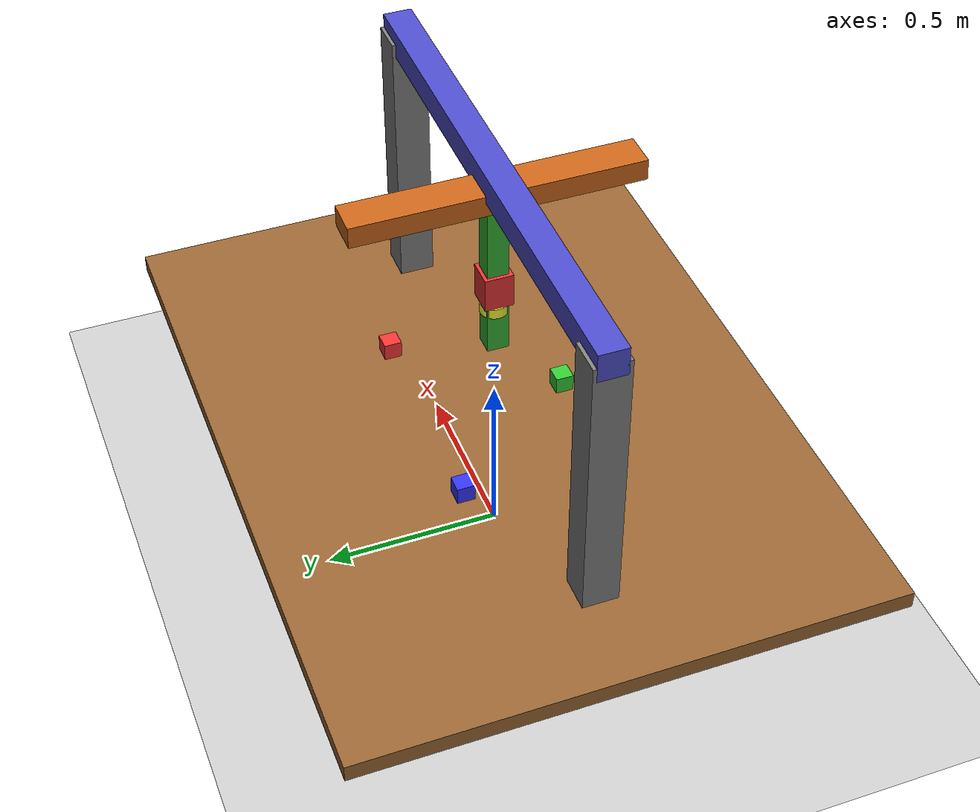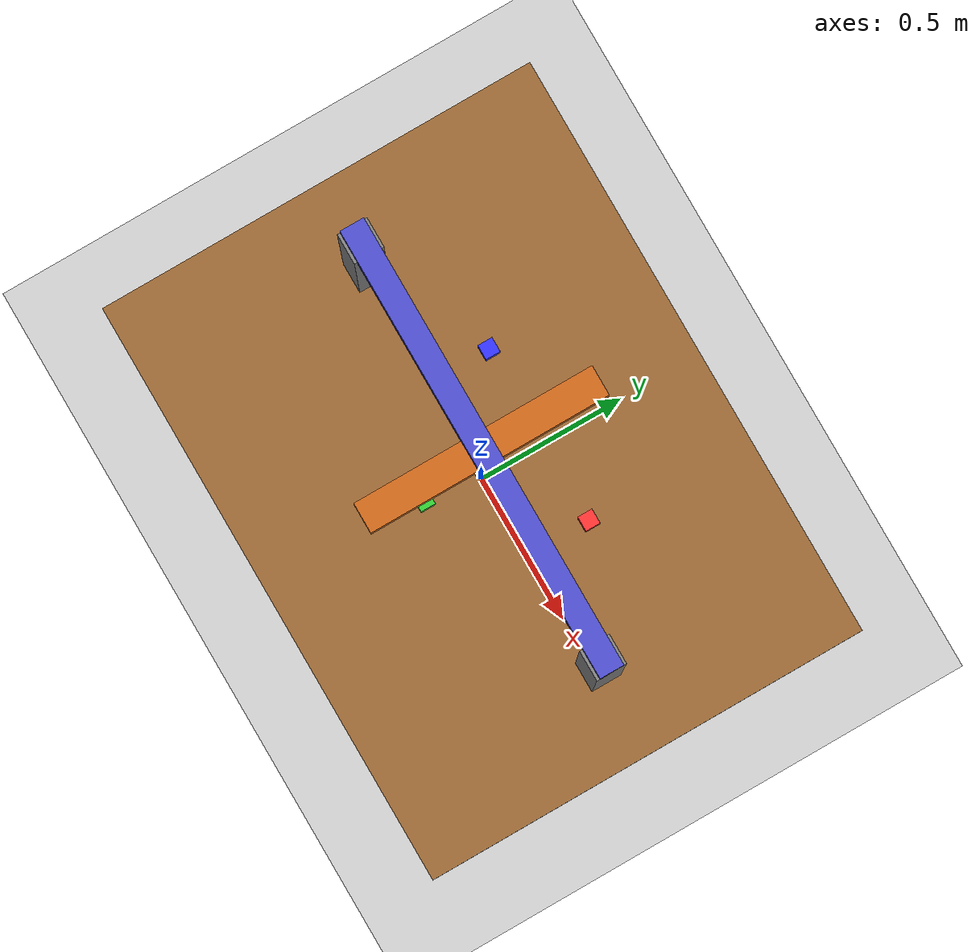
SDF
<?xml version="1.0" ?>
<sdf version="1.6">
  <world name="gantry_world">

    <!-- Physics -->
    <physics type="ode">
      <max_step_size>0.001</max_step_size>
      <real_time_factor>1</real_time_factor>
      <real_time_update_rate>1000</real_time_update_rate>
    </physics>

    <!-- Scene -->
    <scene>
      <ambient>0.4 0.4 0.4 1</ambient>
      <background>0.7 0.7 0.7 1</background>
      <shadows>true</shadows>
    </scene>

    <!-- Sun light -->
    <light type="directional" name="sun">
      <cast_shadows>true</cast_shadows>
      <pose>0 0 10 0 0 0</pose>
      <diffuse>0.8 0.8 0.8 1</diffuse>
      <specular>0.2 0.2 0.2 1</specular>
      <direction>-0.5 0.1 -0.9</direction>
    </light>

    <!-- Ground Plane -->
    <model name="ground_plane">
      <static>true</static>
      <link name="link">
        <collision name="collision">
          <geometry>
            <plane>
              <normal>0 0 1</normal>
              <size>10 10</size>
            </plane>
          </geometry>
        </collision>
        <visual name="visual">
          <geometry>
            <plane>
              <normal>0 0 1</normal>
              <size>10 10</size>
            </plane>
          </geometry>
          <material>
            <ambient>0.8 0.8 0.8 1</ambient>
            <diffuse>0.8 0.8 0.8 1</diffuse>
          </material>
        </visual>
      </link>
    </model>

    <!-- Work Table -->
    <model name="work_table">
      <static>true</static>
      <pose>0 0 0.4 0 0 0</pose>
      <link name="table_link">
        <collision name="collision">
          <geometry>
            <box><size>2.0 1.5 0.05</size></box>
          </geometry>
        </collision>
        <visual name="visual">
          <geometry>
            <box><size>2.0 1.5 0.05</size></box>
          </geometry>
          <material>
            <ambient>0.6 0.4 0.2 1</ambient>
            <diffuse>0.6 0.4 0.2 1</diffuse>
          </material>
        </visual>
      </link>
    </model>

    <!-- ==================== GANTRY ROBOT ==================== -->
    <model name="gantry_robot">
      <pose>0 0 0.425 0 0 0</pose>

      <!-- Base Frame (Fixed to table) -->
      <link name="base_link">
        <pose>0 0 0 0 0 0</pose>
        <inertial>
          <mass>50</mass>
          <inertia>
            <ixx>5</ixx><ixy>0</ixy><ixz>0</ixz>
            <iyy>5</iyy><iyz>0</iyz><izz>5</izz>
          </inertia>
        </inertial>
        <!-- Left vertical pillar -->
        <visual name="pillar_left">
          <pose>-0.7 0 0.4 0 0 0</pose>
          <geometry><box><size>0.1 0.1 0.8</size></box></geometry>
          <material>
            <ambient>0.3 0.3 0.3 1</ambient>
            <diffuse>0.5 0.5 0.5 1</diffuse>
          </material>
        </visual>
        <collision name="pillar_left_col">
          <pose>-0.7 0 0.4 0 0 0</pose>
          <geometry><box><size>0.1 0.1 0.8</size></box></geometry>
        </collision>
        <!-- Right vertical pillar -->
        <visual name="pillar_right">
          <pose>0.7 0 0.4 0 0 0</pose>
          <geometry><box><size>0.1 0.1 0.8</size></box></geometry>
          <material>
            <ambient>0.3 0.3 0.3 1</ambient>
            <diffuse>0.5 0.5 0.5 1</diffuse>
          </material>
        </visual>
        <collision name="pillar_right_col">
          <pose>0.7 0 0.4 0 0 0</pose>
          <geometry><box><size>0.1 0.1 0.8</size></box></geometry>
        </collision>
        <!-- Top horizontal beam (X-axis rail) -->
        <visual name="x_rail">
          <pose>0 0 0.8 0 0 0</pose>
          <geometry><box><size>1.5 0.08 0.08</size></box></geometry>
          <material>
            <ambient>0.2 0.2 0.6 1</ambient>
            <diffuse>0.3 0.3 0.8 1</diffuse>
          </material>
        </visual>
        <collision name="x_rail_col">
          <pose>0 0 0.8 0 0 0</pose>
          <geometry><box><size>1.5 0.08 0.08</size></box></geometry>
        </collision>
      </link>

      <!-- X-Carriage (moves along X) -->
      <link name="x_carriage">
        <pose>0 0 0.75 0 0 0</pose>
        <inertial>
          <mass>10</mass>
          <inertia>
            <ixx>0.5</ixx><ixy>0</ixy><ixz>0</ixz>
            <iyy>0.5</iyy><iyz>0</iyz><izz>0.5</izz>
          </inertia>
        </inertial>
        <!-- Y-axis rail -->
        <visual name="y_rail">
          <pose>0 0 0 0 0 0</pose>
          <geometry><box><size>0.1 0.8 0.06</size></box></geometry>
          <material>
            <ambient>0.6 0.3 0.1 1</ambient>
            <diffuse>0.8 0.4 0.1 1</diffuse>
          </material>
        </visual>
        <collision name="y_rail_col">
          <pose>0 0 0 0 0 0</pose>
          <geometry><box><size>0.1 0.8 0.06</size></box></geometry>
        </collision>
      </link>

      <!-- Y-Carriage (moves along Y) -->
      <link name="y_carriage">
        <pose>0 0 0.7 0 0 0</pose>
        <inertial>
          <mass>5</mass>
          <inertia>
            <ixx>0.2</ixx><ixy>0</ixy><ixz>0</ixz>
            <iyy>0.2</iyy><iyz>0</iyz><izz>0.2</izz>
          </inertia>
        </inertial>
        <!-- Z-axis column -->
        <visual name="z_column">
          <pose>0 0 -0.2 0 0 0</pose>
          <geometry><box><size>0.06 0.06 0.5</size></box></geometry>
          <material>
            <ambient>0.1 0.5 0.1 1</ambient>
            <diffuse>0.2 0.7 0.2 1</diffuse>
          </material>
        </visual>
        <collision name="z_column_col">
          <pose>0 0 -0.2 0 0 0</pose>
          <geometry><box><size>0.06 0.06 0.5</size></box></geometry>
        </collision>
      </link>

      <!-- Z-Carriage (moves along Z) - End Effector Mount -->
      <link name="z_carriage">
        <pose>0 0 0.45 0 0 0</pose>
        <inertial>
          <mass>2</mass>
          <inertia>
            <ixx>0.05</ixx><ixy>0</ixy><ixz>0</ixz>
            <iyy>0.05</iyy><iyz>0</iyz><izz>0.05</izz>
          </inertia>
        </inertial>
        <visual name="end_effector">
          <pose>0 0 0 0 0 0</pose>
          <geometry><box><size>0.08 0.08 0.1</size></box></geometry>
          <material>
            <ambient>0.7 0.1 0.1 1</ambient>
            <diffuse>0.9 0.2 0.2 1</diffuse>
          </material>
        </visual>
        <collision name="end_effector_col">
          <pose>0 0 0 0 0 0</pose>
          <geometry><box><size>0.08 0.08 0.1</size></box></geometry>
        </collision>
      </link>

      <!-- Gripper (suction cup) -->
      <link name="gripper">
        <pose>0 0 0.38 0 0 0</pose>
        <inertial>
          <mass>0.5</mass>
          <inertia>
            <ixx>0.01</ixx><ixy>0</ixy><ixz>0</ixz>
            <iyy>0.01</iyy><iyz>0</iyz><izz>0.01</izz>
          </inertia>
        </inertial>
        <visual name="gripper_visual">
          <pose>0 0 0 0 0 0</pose>
          <geometry><cylinder><radius>0.04</radius><length>0.03</length></cylinder></geometry>
          <material>
            <ambient>0.8 0.8 0.1 1</ambient>
            <diffuse>1.0 1.0 0.2 1</diffuse>
          </material>
        </visual>
        <collision name="gripper_col">
          <pose>0 0 0 0 0 0</pose>
          <geometry><cylinder><radius>0.04</radius><length>0.03</length></cylinder></geometry>
        </collision>
      </link>

      <!-- JOINTS -->

      <!-- X-axis joint (prismatic) -->
      <joint name="joint_x" type="prismatic">
        <parent>base_link</parent>
        <child>x_carriage</child>
        <axis>
          <xyz>1 0 0</xyz>
          <limit>
            <lower>-0.5</lower>
            <upper>0.5</upper>
            <effort>100</effort>
            <velocity>0.5</velocity>
          </limit>
          <dynamics>
            <damping>10</damping>
            <friction>5</friction>
          </dynamics>
        </axis>
      </joint>

      <!-- Y-axis joint (prismatic) -->
      <joint name="joint_y" type="prismatic">
        <parent>x_carriage</parent>
        <child>y_carriage</child>
        <axis>
          <xyz>0 1 0</xyz>
          <limit>
            <lower>-0.3</lower>
            <upper>0.3</upper>
            <effort>100</effort>
            <velocity>0.5</velocity>
          </limit>
          <dynamics>
            <damping>10</damping>
            <friction>5</friction>
          </dynamics>
        </axis>
      </joint>

      <!-- Z-axis joint (prismatic) -->
      <joint name="joint_z" type="prismatic">
        <parent>y_carriage</parent>
        <child>z_carriage</child>
        <axis>
          <xyz>0 0 1</xyz>
          <limit>
            <lower>-0.3</lower>
            <upper>0.2</upper>
            <effort>100</effort>
            <velocity>0.5</velocity>
          </limit>
          <dynamics>
            <damping>10</damping>
            <friction>5</friction>
          </dynamics>
        </axis>
      </joint>

      <!-- Gripper joint (fixed) -->
      <joint name="gripper_joint" type="fixed">
        <parent>z_carriage</parent>
        <child>gripper</child>
      </joint>

    </model>

    <!-- Sample objects for pick and place -->
    <model name="box_red">
      <pose>0.3 0.2 0.475 0 0 0</pose>
      <link name="link">
        <inertial>
          <mass>0.1</mass>
          <inertia>
            <ixx>0.001</ixx><ixy>0</ixy><ixz>0</ixz>
            <iyy>0.001</iyy><iyz>0</iyz><izz>0.001</izz>
          </inertia>
        </inertial>
        <collision name="collision">
          <geometry><box><size>0.05 0.05 0.05</size></box></geometry>
        </collision>
        <visual name="visual">
          <geometry><box><size>0.05 0.05 0.05</size></box></geometry>
          <material>
            <ambient>0.8 0.1 0.1 1</ambient>
            <diffuse>1.0 0.2 0.2 1</diffuse>
          </material>
        </visual>
      </link>
    </model>

    <model name="box_blue">
      <pose>-0.3 0.2 0.475 0 0 0</pose>
      <link name="link">
        <inertial>
          <mass>0.1</mass>
          <inertia>
            <ixx>0.001</ixx><ixy>0</ixy><ixz>0</ixz>
            <iyy>0.001</iyy><iyz>0</iyz><izz>0.001</izz>
          </inertia>
        </inertial>
        <collision name="collision">
          <geometry><box><size>0.05 0.05 0.05</size></box></geometry>
        </collision>
        <visual name="visual">
          <geometry><box><size>0.05 0.05 0.05</size></box></geometry>
          <material>
            <ambient>0.1 0.1 0.8 1</ambient>
            <diffuse>0.2 0.2 1.0 1</diffuse>
          </material>
        </visual>
      </link>
    </model>

    <model name="box_green">
      <pose>0 -0.2 0.475 0 0 0</pose>
      <link name="link">
        <inertial>
          <mass>0.1</mass>
          <inertia>
            <ixx>0.001</ixx><ixy>0</ixy><ixz>0</ixz>
            <iyy>0.001</iyy><iyz>0</iyz><izz>0.001</izz>
          </inertia>
        </inertial>
        <collision name="collision">
          <geometry><box><size>0.05 0.05 0.05</size></box></geometry>
        </collision>
        <visual name="visual">
          <geometry><box><size>0.05 0.05 0.05</size></box></geometry>
          <material>
            <ambient>0.1 0.6 0.1 1</ambient>
            <diffuse>0.2 0.8 0.2 1</diffuse>
          </material>
        </visual>
      </link>
    </model>

  </world>
</sdf>
